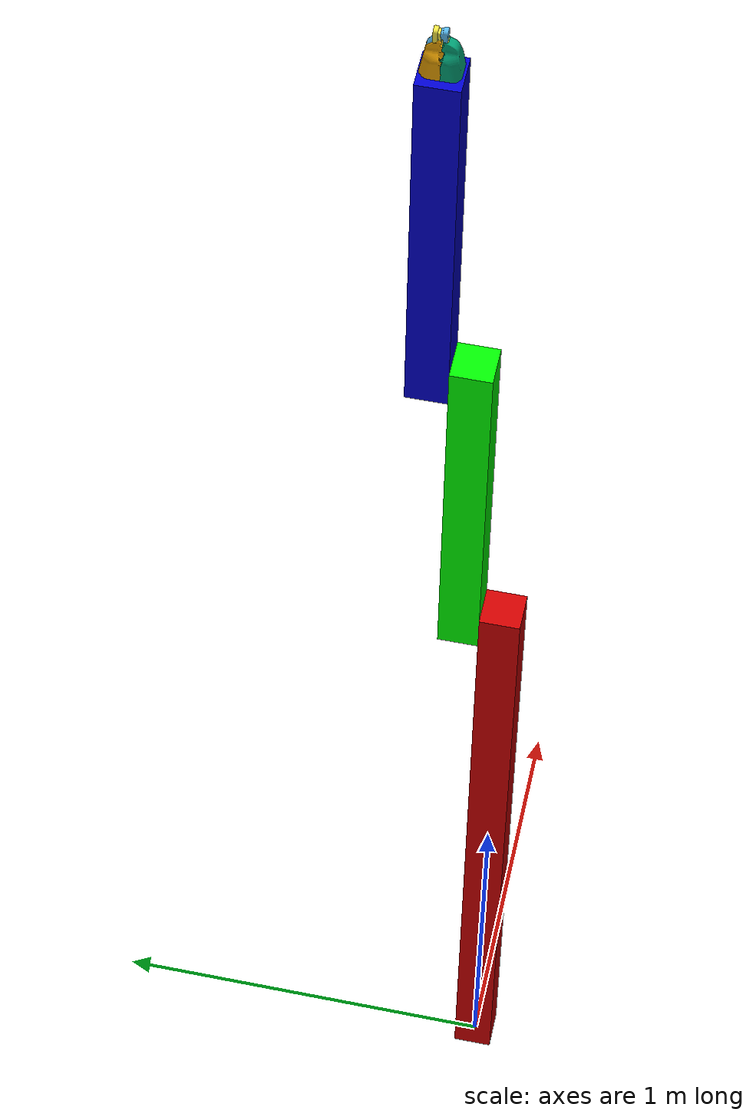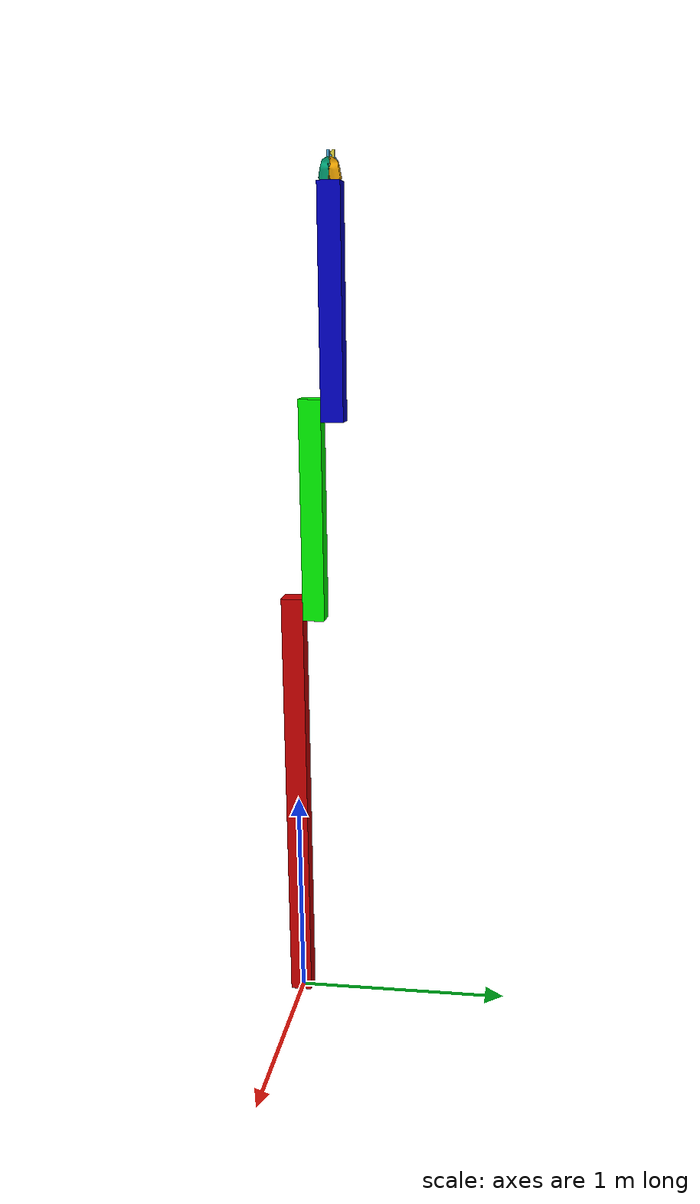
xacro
<?xml version="1.0"?>
<!-- Specifying a namespace -->
<robot name="rrbot"
    xmlns:xacro="http://www.ros.org/wiki/xacro">

    <!-- Constants for robot dimensions -->
    <xacro:property name="width" value="0.1" />
    <xacro:property name="height1" value="2" />
    <xacro:property name="height2" value="1" />
    <xacro:property name="height3" value="1" />
    <xacro:property name="axle_offset" value="0.05" />
    <xacro:property name="damp" value="0.7" />

    <!-- Default Inertial -->
    <xacro:macro name="default_inertial" params="z_value i_value mass">
        <inertial>
            <origin xyz="0 0 ${z_value}" rpy="0.0 0.0 0.0"/>
            <mass value="${mass}" />
            <inertia ixx="${i_value}" ixy="0.0" ixz="0.0" iyy="${i_value}" iyz="0.0" izz="${i_value}" />
        </inertial>
    </xacro:macro>

    <!-- Import Rviz colors -->
    <xacro:include filename="$(find ros_robotics)/urdf/materials.xacro" />
    <!-- Import gripper URDF -->
    <xacro:include filename="$(find ros_robotics)/urdf/gripper.xacro" />
    <!-- Import Gazebo elements, including Gazebo colors -->
    <xacro:include filename="$(find ros_robotics)/urdf/rrbot.gazebo" />

    <!-- Fixing the robot arm to the world -->
    <link name="world" />
    <joint name="fixed" type="fixed">
        <parent link="world"/>
        <child link="base_link"/>
    </joint>

    <!-- Base Link -->
    <link name="base_link">
        <visual>
            <origin xyz="0.0 0.0 ${height1/2}" rpy="0.0 0.0 0.0"/>
            <geometry>
                <box size="${width} ${width} ${height1}"/>
            </geometry>
            <material name="red"/>

        </visual>
        <collision>
            <origin xyz="0.0 0.0 ${height1/2}" rpy="0.0 0.0 0.0"/>
            <geometry>
                <box size="${width} ${width} ${height1}"/>
            </geometry>
        </collision>
        <inertial>
            <origin xyz="0.0 0.0 ${height1/2}" rpy="0.0 0.0 0.0"/>
            <mass value="1"/>
            <inertia ixx="1.0" ixy="0.0" ixz="0.0" iyy="1.0" iyz="0.0" izz="1.0"/>
        </inertial>
        <xacro:default_inertial z_value="${height1/2}" i_value="1.0" mass="1" />
    </link>

    <!-- Middle Link -->
    <link name="mid_link">
        <visual>
            <origin xyz="0.0 0.0 ${height2/2 - axle_offset}" rpy="0.0 0.0 0.0"/>
            <geometry>
                <box size="${width} ${width} ${height2}"/>
            </geometry>
            <material name="green"/>

        </visual>
        <collision>
            <origin xyz="0.0 0.0 ${height2/2 - axle_offset}" rpy="0.0 0.0 0.0"/>
            <geometry>
                <box size="${width} ${width} ${height2}"/>
            </geometry>
        </collision>
        <inertial>
            <origin xyz="0.0 0.0 ${height2/2 - axle_offset}" rpy="0.0 0.0 0.0"/>
            <mass value="1"/>
            <inertia ixx="1.0" ixy="0.0" ixz="0.0" iyy="1.0" iyz="0.0" izz="1.0"/>
        </inertial>
        <xacro:default_inertial z_value="${height2/2 - axle_offset}" i_value="1.0" mass="1"/>
    </link>
    <!-- Joint between Base Link and Middle Link -->
    <joint name="joint_base_mid" type="revolute">
        <parent link="base_link"/>
        <child link="mid_link"/>
        <origin xyz="0.0 ${width} ${height1 - axle_offset}" rpy="0.0 0.0 0.0"/>
        <axis xyz="0.0 1 0.0"/>
        <dinamics damping="${damp}" />
        <limit lower="-3.14" upper="3.14" effort="100.0" velocity="0.5"/>
    </joint>

    <!-- Top Link -->
    <link name="top_link">
        <visual name="">
            <origin xyz="0.0 0.0 ${height3/2 - axle_offset}" rpy="0.0 0.0 0.0"/>
            <geometry>
                <box size="${width} ${width} ${height3}"/>
            </geometry>
            <material name="blue"/>

        </visual>
        <collision>
            <origin xyz="0.0 0.0 ${height3/2 - axle_offset}" rpy="0.0 0.0 0.0"/>
            <geometry>
                <box size="${width} ${width} ${height3}"/>
            </geometry>
        </collision>
        <inertial>
            <origin xyz="0.0 0.0 ${height3/2 - axle_offset}" rpy="0.0 0.0 0.0"/>
            <mass value="1"/>
            <inertia ixx="1.0" ixy="0.0" ixz="0.0" iyy="1.0" iyz="0.0" izz="1.0"/>
        </inertial>
        <xacro:default_inertial z_value="${height3/2 - axle_offset}" i_value="1.0" mass="1"/>

    </link>
    <!-- Joint between Middle Link and Top Link -->
    <joint name="joint_mid_top" type="revolute">
        <parent link="mid_link"/>
        <child link="top_link"/>
        <origin xyz="0.0 ${width} ${height2 - axle_offset*2}" rpy="0.0 0.0 0.0"/>
        <axis xyz="0.0 1 0.0"/>
        <dinamics damping="${damp}" />
        <limit lower="-3.14" upper="3.14" effort="100.0" velocity="0.5"/>
    </joint>

    <transmission name="transmission1">
        <type>transmission_interface/SimpleTransmission</type>
        <joint name="joint_base_mid">
            <hardwareInterface>hardware_interface/EffortJointInterface</hardwareInterface>
        </joint>
        <actuator name="motor1">
            <mechanicalReduction>1</mechanicalReduction>
        </actuator>
    </transmission>

    <transmission name="transmission2">
        <type>transmission_interface/SimpleTransmission</type>
        <joint name="joint_mid_top">
            <hardwareInterface>hardware_interface/EffortJointInterface</hardwareInterface>
        </joint>
        <actuator name="motor2">
            <mechanicalReduction>1</mechanicalReduction>
        </actuator>
    </transmission>
</robot>

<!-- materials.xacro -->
<robot>

    <material name="black">
        <color rgba="0.0 0.0 0.0 1.0"/>
    </material>

    <material name="blue">
        <color rgba="0.0 0.0 0.8 1.0"/>
    </material>

    <material name="green">
        <color rgba="0.0 1.0 0.0 1.0"/>
    </material>

    <material name="grey">
        <color rgba="0.2 0.2 0.2 1.0"/>
    </material>

    <material name="orange">
        <color rgba="${255/255} ${108/255} ${10/255} 1.0"/>
    </material>

    <material name="brown">
        <color rgba="${222/255} ${207/255} ${195/255} 1.0"/>
    </material>

    <material name="red">
        <color rgba="0.8 0.0 0.0 1.0"/>
    </material>

    <material name="white">
        <color rgba="1.0 1.0 1.0 1.0"/>
    </material>

</robot>

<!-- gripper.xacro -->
<robot xmlns:xacro="http://www.ros.org/wiki/xacro">

    <!-- Gripper -->
    <joint name="left_gripper_joint" type="revolute">
        <parent link="top_link"/>
        <child link="left_gripper"/>
        <origin xyz="0 0 ${height2 - axle_offset}" rpy="0 -1.57 0"/>
        <axis xyz="0 0 -1"/>
        <limit effort="30.0" lower="-0.548" upper="0.0" velocity="0.1"/>
    </joint>

    <link name="left_gripper">
        <visual>
            <origin rpy="0 0 0" xyz="0 0 0"/>
            <geometry>
                <mesh filename="package://ros_robotics/meshes/l_finger.dae"/>
            </geometry>
        </visual>

        <collision>
            <origin rpy="0 0 0" xyz="0.05 0.025 0"/>
            <geometry>
                <box size="0.1 0.05 0.05"/>
            </geometry>
        </collision>
        <xacro:default_inertial z_value="0" i_value="1e-6" mass="1"/>
    </link>

    <joint name="left_tip_joint" type="fixed">
        <parent link="left_gripper"/>
        <child link="left_tip"/>
    </joint>

    <link name="left_tip">
        <visual>
            <origin rpy="0 0 0" xyz="0.09137 0.00495 0"/>
            <geometry>
                <mesh filename="package://ros_robotics/meshes/l_finger_tip.dae"/>
            </geometry>
        </visual>

        <collision>
            <origin rpy="0 0 0" xyz="0.11 0.005 0"/>
            <geometry>
                <box size="0.02 0.03 0.02"/>
            </geometry>
        </collision>
        <xacro:default_inertial z_value="0" i_value="1e-6" mass="1e-5"/>
    </link>

    <joint name="right_gripper_joint" type="revolute">
        <parent link="top_link"/>
        <child link="right_gripper"/>
        <origin xyz="0 0 ${height2 - axle_offset}" rpy="0 -1.57 0"/>
        <axis xyz="0 0 1"/>
        <limit effort="30.0" lower="-0.548" upper="0.0" velocity="0.1"/>
    </joint>

    <link name="right_gripper">
        <visual>
            <origin rpy="3.1415 0 0" xyz="0 0 0"/>
            <geometry>
                <mesh filename="package://ros_robotics/meshes/l_finger.dae"/>
            </geometry>
        </visual>

        <collision>
            <origin rpy="0 0 0" xyz="0.05 -0.025 0"/>
            <geometry>
                <box size="0.1 0.05 0.05"/>
            </geometry>
        </collision>
        <xacro:default_inertial z_value="0" i_value="1e-6" mass="1"/>
    </link>

    <joint name="right_tip_joint" type="fixed">
        <parent link="right_gripper"/>
        <child link="right_tip"/>
    </joint>

    <link name="right_tip">
        <visual>
            <origin rpy="-3.1415 0 0" xyz="0.09137 0.00495 0"/>
            <geometry>
                <mesh filename="package://ros_robotics/meshes/l_finger_tip.dae"/>
            </geometry>
        </visual>

        <collision>
            <origin rpy="0 0 0" xyz="0.11 -0.005 0"/>
            <geometry>
                <box size="0.02 0.03 0.02"/>
            </geometry>
        </collision>
        <xacro:default_inertial z_value="0" i_value="1e-6" mass="1e-5"/>
    </link>

    <transmission name="gripper_transmission1">
        <type>transmission_interface/SimpleTransmission</type>
        <joint name="left_gripper_joint">
            <hardwareInterface>hardware_interface/EffortJointInterface</hardwareInterface>
        </joint>
        <actuator name="gripper_motor1">
            <mechanicalReduction>1</mechanicalReduction>
        </actuator>
    </transmission>

    <transmission name="gripper_transmission2">
        <type>transmission_interface/SimpleTransmission</type>
        <joint name="right_gripper_joint">
            <hardwareInterface>hardware_interface/EffortJointInterface</hardwareInterface>
        </joint>
        <actuator name="gripper_motor2">
            <mechanicalReduction>1</mechanicalReduction>
        </actuator>
    </transmission>

</robot>
